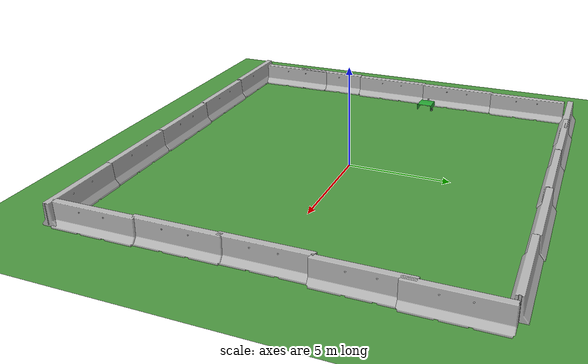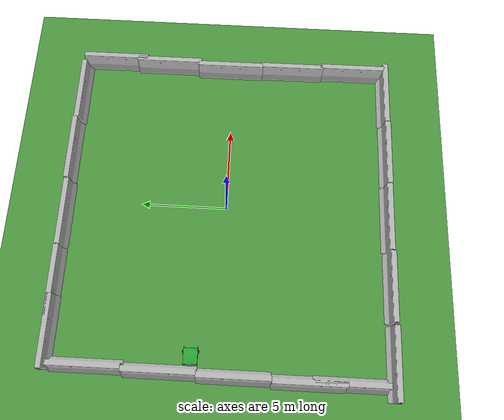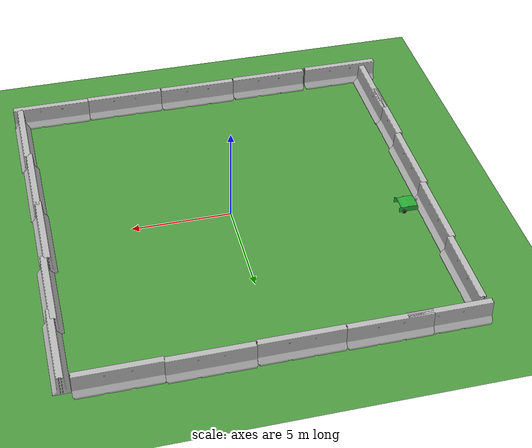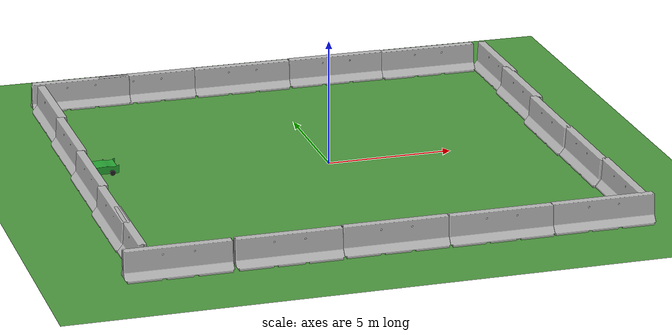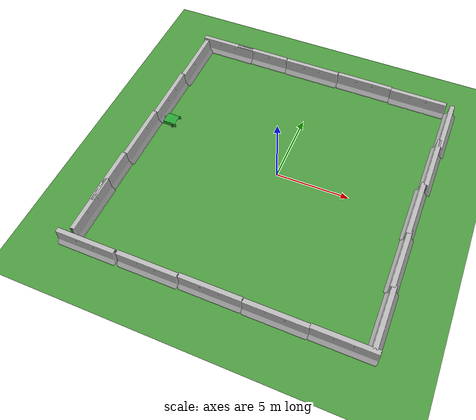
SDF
<sdf version="1.7">
 <world name="default">
  <light name="sun" type="directional">
   <pose>0 0 10 0 -0 0</pose>
   <diffuse>0.8 0.8 0.8 1</diffuse>
   <specular>0.2 0.2 0.2 1</specular>
   <attenuation>
    <range>1000</range>
    <constant>0.9</constant>
    <linear>0.01</linear>
    <quadratic>0.001</quadratic>
   </attenuation>
   <direction>-0.5 0.1 -0.9</direction>
   <spot><inner_angle>0</inner_angle><outer_angle>0</outer_angle><falloff>0</falloff></spot>
  </light>
  <model name="ground_plane">
   <static>1</static>
   <link name="link">
    <collision name="collision">
     <geometry><plane><normal>0 0 1</normal><size>100 100</size></plane></geometry>
     <surface><friction><ode><mu>100</mu><mu2>50</mu2></ode></friction></surface>
    </collision>
    <visual name="visual">
     <cast_shadows>0</cast_shadows>
     <geometry><plane><normal>0 0 1</normal><size>20 20</size></plane></geometry>
     <material>
      <script>
       <uri>model://jardim/materials/scripts</uri>
       <uri>model://jardim/materials/texture</uri>
       <name>vrc/grass</name>
      </script>
     </material>
    </visual>
   </link>
  </model>
  <gravity>0 0 -9.8</gravity>
  <magnetic_field>6e-06 2.3e-05 -4.2e-05</magnetic_field>
  <atmosphere type="adiabatic"/>
  <physics name="default_physics" default="0" type="ode">
   <max_step_size>0.001</max_step_size>
   <real_time_factor>1</real_time_factor>
   <real_time_update_rate>1000</real_time_update_rate>
  </physics>
  <scene><ambient>0.4 0.4 0.4 1</ambient><background>0.7 0.7 0.7 1</background><shadows>1</shadows></scene>
  <spherical_coordinates>
   <surface_model>EARTH_WGS84</surface_model>
   <latitude_deg>0</latitude_deg>
   <longitude_deg>0</longitude_deg>
   <elevation>0</elevation>
   <heading_deg>0</heading_deg>
  </spherical_coordinates>
  <model name="jersey_barrier">
   <static>1</static>
   <link name="link">
    <visual name="visual">
     <geometry><mesh><uri>model://jersey_barrier/meshes/jersey_barrier.dae</uri></mesh></geometry>
    </visual>
    <collision name="upright">
     <pose>0 0 0.5715 0 -0 0</pose>
     <geometry><box><size>4.06542 0.3063 1.143</size></box></geometry>
    </collision>
    <collision name="base">
     <pose>0 0 0.032258 0 -0 0</pose>
     <geometry><box><size>4.06542 0.8107 0.064516</size></box></geometry>
    </collision>
    <collision name="base2">
     <pose>0 0 0.1 0 -0 0</pose>
     <geometry><box><size>4.06542 0.65 0.1</size></box></geometry>
    </collision>
    <collision name="base3">
     <pose>0 0 0.2 0 -0 0</pose>
     <geometry><box><size>4.06542 0.5 0.1</size></box></geometry>
    </collision>
    <collision name="left-angle">
     <pose>0 -0.224 0.2401 0.9 -0 0</pose>
     <geometry><box><size>4.06542 0.5 0.064516</size></box></geometry>
    </collision>
    <collision name="right-angle">
     <pose>0 0.224 0.2401 -0.9 0 0</pose>
     <geometry><box><size>4.06542 0.5 0.064516</size></box></geometry>
    </collision>
   </link>
   <pose>-5.01879 9.49521 0 0 -0 0</pose>
  </model>
  <model name="jersey_barrier_clone">
   <static>1</static>
   <link name="link">
    <visual name="visual">
     <geometry><mesh><uri>model://jersey_barrier/meshes/jersey_barrier.dae</uri></mesh></geometry>
    </visual>
    <collision name="upright">
     <pose>0 0 0.5715 0 -0 0</pose>
     <geometry><box><size>4.06542 0.3063 1.143</size></box></geometry>
    </collision>
    <collision name="base">
     <pose>0 0 0.032258 0 -0 0</pose>
     <geometry><box><size>4.06542 0.8107 0.064516</size></box></geometry>
    </collision>
    <collision name="base2">
     <pose>0 0 0.1 0 -0 0</pose>
     <geometry><box><size>4.06542 0.65 0.1</size></box></geometry>
    </collision>
    <collision name="base3">
     <pose>0 0 0.2 0 -0 0</pose>
     <geometry><box><size>4.06542 0.5 0.1</size></box></geometry>
    </collision>
    <collision name="left-angle">
     <pose>0 -0.224 0.2401 0.9 -0 0</pose>
     <geometry><box><size>4.06542 0.5 0.064516</size></box></geometry>
    </collision>
    <collision name="right-angle">
     <pose>0 0.224 0.2401 -0.9 0 0</pose>
     <geometry><box><size>4.06542 0.5 0.064516</size></box></geometry>
    </collision>
   </link>
   <pose>-0.965961 9.47835 0 0 -0 0</pose>
  </model>
  <model name="jersey_barrier_clone_0">
   <static>1</static>
   <link name="link">
    <visual name="visual">
     <geometry><mesh><uri>model://jersey_barrier/meshes/jersey_barrier.dae</uri></mesh></geometry>
    </visual>
    <collision name="upright">
     <pose>0 0 0.5715 0 -0 0</pose>
     <geometry><box><size>4.06542 0.3063 1.143</size></box></geometry>
    </collision>
    <collision name="base">
     <pose>0 0 0.032258 0 -0 0</pose>
     <geometry><box><size>4.06542 0.8107 0.064516</size></box></geometry>
    </collision>
    <collision name="base2">
     <pose>0 0 0.1 0 -0 0</pose>
     <geometry><box><size>4.06542 0.65 0.1</size></box></geometry>
    </collision>
    <collision name="base3">
     <pose>0 0 0.2 0 -0 0</pose>
     <geometry><box><size>4.06542 0.5 0.1</size></box></geometry>
    </collision>
    <collision name="left-angle">
     <pose>0 -0.224 0.2401 0.9 -0 0</pose>
     <geometry><box><size>4.06542 0.5 0.064516</size></box></geometry>
    </collision>
    <collision name="right-angle">
     <pose>0 0.224 0.2401 -0.9 0 0</pose>
     <geometry><box><size>4.06542 0.5 0.064516</size></box></geometry>
    </collision>
   </link>
   <pose>3.10823 9.53607 0 0 -0 0</pose>
  </model>
  <model name="jersey_barrier_clone_1">
   <static>1</static>
   <link name="link">
    <visual name="visual">
     <geometry><mesh><uri>model://jersey_barrier/meshes/jersey_barrier.dae</uri></mesh></geometry>
    </visual>
    <collision name="upright">
     <pose>0 0 0.5715 0 -0 0</pose>
     <geometry><box><size>4.06542 0.3063 1.143</size></box></geometry>
    </collision>
    <collision name="base">
     <pose>0 0 0.032258 0 -0 0</pose>
     <geometry><box><size>4.06542 0.8107 0.064516</size></box></geometry>
    </collision>
    <collision name="base2">
     <pose>0 0 0.1 0 -0 0</pose>
     <geometry><box><size>4.06542 0.65 0.1</size></box></geometry>
    </collision>
    <collision name="base3">
     <pose>0 0 0.2 0 -0 0</pose>
     <geometry><box><size>4.06542 0.5 0.1</size></box></geometry>
    </collision>
    <collision name="left-angle">
     <pose>0 -0.224 0.2401 0.9 -0 0</pose>
     <geometry><box><size>4.06542 0.5 0.064516</size></box></geometry>
    </collision>
    <collision name="right-angle">
     <pose>0 0.224 0.2401 -0.9 0 0</pose>
     <geometry><box><size>4.06542 0.5 0.064516</size></box></geometry>
    </collision>
   </link>
   <pose>7.13222 9.46827 0 0 -0 0</pose>
  </model>
  <model name="jersey_barrier_clone_3">
   <static>1</static>
   <link name="link">
    <visual name="visual">
     <geometry><mesh><uri>model://jersey_barrier/meshes/jersey_barrier.dae</uri></mesh></geometry>
    </visual>
    <collision name="upright">
     <pose>0 0 0.5715 0 -0 0</pose>
     <geometry><box><size>4.06542 0.3063 1.143</size></box></geometry>
    </collision>
    <collision name="base">
     <pose>0 0 0.032258 0 -0 0</pose>
     <geometry><box><size>4.06542 0.8107 0.064516</size></box></geometry>
    </collision>
    <collision name="base2">
     <pose>0 0 0.1 0 -0 0</pose>
     <geometry><box><size>4.06542 0.65 0.1</size></box></geometry>
    </collision>
    <collision name="base3">
     <pose>0 0 0.2 0 -0 0</pose>
     <geometry><box><size>4.06542 0.5 0.1</size></box></geometry>
    </collision>
    <collision name="left-angle">
     <pose>0 -0.224 0.2401 0.9 -0 0</pose>
     <geometry><box><size>4.06542 0.5 0.064516</size></box></geometry>
    </collision>
    <collision name="right-angle">
     <pose>0 0.224 0.2401 -0.9 0 0</pose>
     <geometry><box><size>4.06542 0.5 0.064516</size></box></geometry>
    </collision>
   </link>
   <pose>9.46949 4.09413 0 0 0 -1.56865</pose>
  </model>
  <model name="jersey_barrier_clone_3_clone">
   <static>1</static>
   <link name="link">
    <visual name="visual">
     <geometry><mesh><uri>model://jersey_barrier/meshes/jersey_barrier.dae</uri></mesh></geometry>
    </visual>
    <collision name="upright">
     <pose>0 0 0.5715 0 -0 0</pose>
     <geometry><box><size>4.06542 0.3063 1.143</size></box></geometry>
    </collision>
    <collision name="base">
     <pose>0 0 0.032258 0 -0 0</pose>
     <geometry><box><size>4.06542 0.8107 0.064516</size></box></geometry>
    </collision>
    <collision name="base2">
     <pose>0 0 0.1 0 -0 0</pose>
     <geometry><box><size>4.06542 0.65 0.1</size></box></geometry>
    </collision>
    <collision name="base3">
     <pose>0 0 0.2 0 -0 0</pose>
     <geometry><box><size>4.06542 0.5 0.1</size></box></geometry>
    </collision>
    <collision name="left-angle">
     <pose>0 -0.224 0.2401 0.9 -0 0</pose>
     <geometry><box><size>4.06542 0.5 0.064516</size></box></geometry>
    </collision>
    <collision name="right-angle">
     <pose>0 0.224 0.2401 -0.9 0 0</pose>
     <geometry><box><size>4.06542 0.5 0.064516</size></box></geometry>
    </collision>
   </link>
   <pose>9.30616 0.213271 0 0 0 -1.56865</pose>
  </model>
  <model name="jersey_barrier_clone_3_clone_0">
   <static>1</static>
   <link name="link">
    <visual name="visual">
     <geometry><mesh><uri>model://jersey_barrier/meshes/jersey_barrier.dae</uri></mesh></geometry>
    </visual>
    <collision name="upright">
     <pose>0 0 0.5715 0 -0 0</pose>
     <geometry><box><size>4.06542 0.3063 1.143</size></box></geometry>
    </collision>
    <collision name="base">
     <pose>0 0 0.032258 0 -0 0</pose>
     <geometry><box><size>4.06542 0.8107 0.064516</size></box></geometry>
    </collision>
    <collision name="base2">
     <pose>0 0 0.1 0 -0 0</pose>
     <geometry><box><size>4.06542 0.65 0.1</size></box></geometry>
    </collision>
    <collision name="base3">
     <pose>0 0 0.2 0 -0 0</pose>
     <geometry><box><size>4.06542 0.5 0.1</size></box></geometry>
    </collision>
    <collision name="left-angle">
     <pose>0 -0.224 0.2401 0.9 -0 0</pose>
     <geometry><box><size>4.06542 0.5 0.064516</size></box></geometry>
    </collision>
    <collision name="right-angle">
     <pose>0 0.224 0.2401 -0.9 0 0</pose>
     <geometry><box><size>4.06542 0.5 0.064516</size></box></geometry>
    </collision>
   </link>
   <pose>9.37231 -3.57069 0 0 0 -1.56865</pose>
  </model>
  <model name="jersey_barrier_clone_3_clone_1">
   <static>1</static>
   <link name="link">
    <visual name="visual">
     <geometry><mesh><uri>model://jersey_barrier/meshes/jersey_barrier.dae</uri></mesh></geometry>
    </visual>
    <collision name="upright">
     <pose>0 0 0.5715 0 -0 0</pose>
     <geometry><box><size>4.06542 0.3063 1.143</size></box></geometry>
    </collision>
    <collision name="base">
     <pose>0 0 0.032258 0 -0 0</pose>
     <geometry><box><size>4.06542 0.8107 0.064516</size></box></geometry>
    </collision>
    <collision name="base2">
     <pose>0 0 0.1 0 -0 0</pose>
     <geometry><box><size>4.06542 0.65 0.1</size></box></geometry>
    </collision>
    <collision name="base3">
     <pose>0 0 0.2 0 -0 0</pose>
     <geometry><box><size>4.06542 0.5 0.1</size></box></geometry>
    </collision>
    <collision name="left-angle">
     <pose>0 -0.224 0.2401 0.9 -0 0</pose>
     <geometry><box><size>4.06542 0.5 0.064516</size></box></geometry>
    </collision>
    <collision name="right-angle">
     <pose>0 0.224 0.2401 -0.9 0 0</pose>
     <geometry><box><size>4.06542 0.5 0.064516</size></box></geometry>
    </collision>
   </link>
   <pose>9.47101 -7.44272 0 0 0 -1.56865</pose>
  </model>
  <model name="jersey_barrier_clone_2_clone">
   <static>1</static>
   <link name="link">
    <visual name="visual">
     <geometry><mesh><uri>model://jersey_barrier/meshes/jersey_barrier.dae</uri></mesh></geometry>
    </visual>
    <collision name="upright">
     <pose>0 0 0.5715 0 -0 0</pose>
     <geometry><box><size>4.06542 0.3063 1.143</size></box></geometry>
    </collision>
    <collision name="base">
     <pose>0 0 0.032258 0 -0 0</pose>
     <geometry><box><size>4.06542 0.8107 0.064516</size></box></geometry>
    </collision>
    <collision name="base2">
     <pose>0 0 0.1 0 -0 0</pose>
     <geometry><box><size>4.06542 0.65 0.1</size></box></geometry>
    </collision>
    <collision name="base3">
     <pose>0 0 0.2 0 -0 0</pose>
     <geometry><box><size>4.06542 0.5 0.1</size></box></geometry>
    </collision>
    <collision name="left-angle">
     <pose>0 -0.224 0.2401 0.9 -0 0</pose>
     <geometry><box><size>4.06542 0.5 0.064516</size></box></geometry>
    </collision>
    <collision name="right-angle">
     <pose>0 0.224 0.2401 -0.9 0 0</pose>
     <geometry><box><size>4.06542 0.5 0.064516</size></box></geometry>
    </collision>
   </link>
   <pose>7.81323 -9.51639 0 0 -0 0</pose>
  </model>
  <model name="jersey_barrier_clone_2_clone_0">
   <static>1</static>
   <link name="link">
    <visual name="visual">
     <geometry><mesh><uri>model://jersey_barrier/meshes/jersey_barrier.dae</uri></mesh></geometry>
    </visual>
    <collision name="upright">
     <pose>0 0 0.5715 0 -0 0</pose>
     <geometry><box><size>4.06542 0.3063 1.143</size></box></geometry>
    </collision>
    <collision name="base">
     <pose>0 0 0.032258 0 -0 0</pose>
     <geometry><box><size>4.06542 0.8107 0.064516</size></box></geometry>
    </collision>
    <collision name="base2">
     <pose>0 0 0.1 0 -0 0</pose>
     <geometry><box><size>4.06542 0.65 0.1</size></box></geometry>
    </collision>
    <collision name="base3">
     <pose>0 0 0.2 0 -0 0</pose>
     <geometry><box><size>4.06542 0.5 0.1</size></box></geometry>
    </collision>
    <collision name="left-angle">
     <pose>0 -0.224 0.2401 0.9 -0 0</pose>
     <geometry><box><size>4.06542 0.5 0.064516</size></box></geometry>
    </collision>
    <collision name="right-angle">
     <pose>0 0.224 0.2401 -0.9 0 0</pose>
     <geometry><box><size>4.06542 0.5 0.064516</size></box></geometry>
    </collision>
   </link>
   <pose>3.78305 -9.55571 0 0 -0 0</pose>
  </model>
  <model name="jersey_barrier_clone_2_clone_1">
   <static>1</static>
   <link name="link">
    <visual name="visual">
     <geometry><mesh><uri>model://jersey_barrier/meshes/jersey_barrier.dae</uri></mesh></geometry>
    </visual>
    <collision name="upright">
     <pose>0 0 0.5715 0 -0 0</pose>
     <geometry><box><size>4.06542 0.3063 1.143</size></box></geometry>
    </collision>
    <collision name="base">
     <pose>0 0 0.032258 0 -0 0</pose>
     <geometry><box><size>4.06542 0.8107 0.064516</size></box></geometry>
    </collision>
    <collision name="base2">
     <pose>0 0 0.1 0 -0 0</pose>
     <geometry><box><size>4.06542 0.65 0.1</size></box></geometry>
    </collision>
    <collision name="base3">
     <pose>0 0 0.2 0 -0 0</pose>
     <geometry><box><size>4.06542 0.5 0.1</size></box></geometry>
    </collision>
    <collision name="left-angle">
     <pose>0 -0.224 0.2401 0.9 -0 0</pose>
     <geometry><box><size>4.06542 0.5 0.064516</size></box></geometry>
    </collision>
    <collision name="right-angle">
     <pose>0 0.224 0.2401 -0.9 0 0</pose>
     <geometry><box><size>4.06542 0.5 0.064516</size></box></geometry>
    </collision>
   </link>
   <pose>-0.29067 -9.53339 0 0 -0 0</pose>
  </model>
  <model name="jersey_barrier_clone_2_clone_2">
   <static>1</static>
   <link name="link">
    <visual name="visual">
     <geometry><mesh><uri>model://jersey_barrier/meshes/jersey_barrier.dae</uri></mesh></geometry>
    </visual>
    <collision name="upright">
     <pose>0 0 0.5715 0 -0 0</pose>
     <geometry><box><size>4.06542 0.3063 1.143</size></box></geometry>
    </collision>
    <collision name="base">
     <pose>0 0 0.032258 0 -0 0</pose>
     <geometry><box><size>4.06542 0.8107 0.064516</size></box></geometry>
    </collision>
    <collision name="base2">
     <pose>0 0 0.1 0 -0 0</pose>
     <geometry><box><size>4.06542 0.65 0.1</size></box></geometry>
    </collision>
    <collision name="base3">
     <pose>0 0 0.2 0 -0 0</pose>
     <geometry><box><size>4.06542 0.5 0.1</size></box></geometry>
    </collision>
    <collision name="left-angle">
     <pose>0 -0.224 0.2401 0.9 -0 0</pose>
     <geometry><box><size>4.06542 0.5 0.064516</size></box></geometry>
    </collision>
    <collision name="right-angle">
     <pose>0 0.224 0.2401 -0.9 0 0</pose>
     <geometry><box><size>4.06542 0.5 0.064516</size></box></geometry>
    </collision>
   </link>
   <pose>-4.3781 -9.58852 0 0 -0 0</pose>
  </model>
  <model name="jersey_barrier_clone_3_clone_1_clone">
   <static>1</static>
   <link name="link">
    <visual name="visual">
     <geometry><mesh><uri>model://jersey_barrier/meshes/jersey_barrier.dae</uri></mesh></geometry>
    </visual>
    <collision name="upright">
     <pose>0 0 0.5715 0 -0 0</pose>
     <geometry><box><size>4.06542 0.3063 1.143</size></box></geometry>
    </collision>
    <collision name="base">
     <pose>0 0 0.032258 0 -0 0</pose>
     <geometry><box><size>4.06542 0.8107 0.064516</size></box></geometry>
    </collision>
    <collision name="base2">
     <pose>0 0 0.1 0 -0 0</pose>
     <geometry><box><size>4.06542 0.65 0.1</size></box></geometry>
    </collision>
    <collision name="base3">
     <pose>0 0 0.2 0 -0 0</pose>
     <geometry><box><size>4.06542 0.5 0.1</size></box></geometry>
    </collision>
    <collision name="left-angle">
     <pose>0 -0.224 0.2401 0.9 -0 0</pose>
     <geometry><box><size>4.06542 0.5 0.064516</size></box></geometry>
    </collision>
    <collision name="right-angle">
     <pose>0 0.224 0.2401 -0.9 0 0</pose>
     <geometry><box><size>4.06542 0.5 0.064516</size></box></geometry>
    </collision>
   </link>
   <pose>-9.80342 -4.94734 0 0 0 -1.56865</pose>
  </model>
  <model name="jersey_barrier_clone_3_clone_1_clone_0">
   <static>1</static>
   <link name="link">
    <visual name="visual">
     <geometry><mesh><uri>model://jersey_barrier/meshes/jersey_barrier.dae</uri></mesh></geometry>
    </visual>
    <collision name="upright">
     <pose>0 0 0.5715 0 -0 0</pose>
     <geometry><box><size>4.06542 0.3063 1.143</size></box></geometry>
    </collision>
    <collision name="base">
     <pose>0 0 0.032258 0 -0 0</pose>
     <geometry><box><size>4.06542 0.8107 0.064516</size></box></geometry>
    </collision>
    <collision name="base2">
     <pose>0 0 0.1 0 -0 0</pose>
     <geometry><box><size>4.06542 0.65 0.1</size></box></geometry>
    </collision>
    <collision name="base3">
     <pose>0 0 0.2 0 -0 0</pose>
     <geometry><box><size>4.06542 0.5 0.1</size></box></geometry>
    </collision>
    <collision name="left-angle">
     <pose>0 -0.224 0.2401 0.9 -0 0</pose>
     <geometry><box><size>4.06542 0.5 0.064516</size></box></geometry>
    </collision>
    <collision name="right-angle">
     <pose>0 0.224 0.2401 -0.9 0 0</pose>
     <geometry><box><size>4.06542 0.5 0.064516</size></box></geometry>
    </collision>
   </link>
   <pose>-9.70647 -0.901357 0 0 0 -1.56865</pose>
  </model>
  <model name="jersey_barrier_clone_3_clone_1_clone_1">
   <static>1</static>
   <link name="link">
    <visual name="visual">
     <geometry><mesh><uri>model://jersey_barrier/meshes/jersey_barrier.dae</uri></mesh></geometry>
    </visual>
    <collision name="upright">
     <pose>0 0 0.5715 0 -0 0</pose>
     <geometry><box><size>4.06542 0.3063 1.143</size></box></geometry>
    </collision>
    <collision name="base">
     <pose>0 0 0.032258 0 -0 0</pose>
     <geometry><box><size>4.06542 0.8107 0.064516</size></box></geometry>
    </collision>
    <collision name="base2">
     <pose>0 0 0.1 0 -0 0</pose>
     <geometry><box><size>4.06542 0.65 0.1</size></box></geometry>
    </collision>
    <collision name="base3">
     <pose>0 0 0.2 0 -0 0</pose>
     <geometry><box><size>4.06542 0.5 0.1</size></box></geometry>
    </collision>
    <collision name="left-angle">
     <pose>0 -0.224 0.2401 0.9 -0 0</pose>
     <geometry><box><size>4.06542 0.5 0.064516</size></box></geometry>
    </collision>
    <collision name="right-angle">
     <pose>0 0.224 0.2401 -0.9 0 0</pose>
     <geometry><box><size>4.06542 0.5 0.064516</size></box></geometry>
    </collision>
   </link>
   <pose>-9.61058 3.11552 0 0 0 -1.56865</pose>
  </model>
  <model name="jersey_barrier_clone_3_clone_1_clone_2">
   <static>1</static>
   <link name="link">
    <visual name="visual">
     <geometry><mesh><uri>model://jersey_barrier/meshes/jersey_barrier.dae</uri></mesh></geometry>
    </visual>
    <collision name="upright">
     <pose>0 0 0.5715 0 -0 0</pose>
     <geometry><box><size>4.06542 0.3063 1.143</size></box></geometry>
    </collision>
    <collision name="base">
     <pose>0 0 0.032258 0 -0 0</pose>
     <geometry><box><size>4.06542 0.8107 0.064516</size></box></geometry>
    </collision>
    <collision name="base2">
     <pose>0 0 0.1 0 -0 0</pose>
     <geometry><box><size>4.06542 0.65 0.1</size></box></geometry>
    </collision>
    <collision name="base3">
     <pose>0 0 0.2 0 -0 0</pose>
     <geometry><box><size>4.06542 0.5 0.1</size></box></geometry>
    </collision>
    <collision name="left-angle">
     <pose>0 -0.224 0.2401 0.9 -0 0</pose>
     <geometry><box><size>4.06542 0.5 0.064516</size></box></geometry>
    </collision>
    <collision name="right-angle">
     <pose>0 0.224 0.2401 -0.9 0 0</pose>
     <geometry><box><size>4.06542 0.5 0.064516</size></box></geometry>
    </collision>
   </link>
   <pose>-9.5034 7.14109 0 0 0 -1.56865</pose>
  </model>
  <model name="jersey_barrier_clone_3_clone_2">
   <static>1</static>
   <link name="link">
    <visual name="visual">
     <geometry><mesh><uri>model://jersey_barrier/meshes/jersey_barrier.dae</uri></mesh></geometry>
    </visual>
    <collision name="upright">
     <pose>0 0 0.5715 0 -0 0</pose>
     <geometry><box><size>4.06542 0.3063 1.143</size></box></geometry>
    </collision>
    <collision name="base">
     <pose>0 0 0.032258 0 -0 0</pose>
     <geometry><box><size>4.06542 0.8107 0.064516</size></box></geometry>
    </collision>
    <collision name="base2">
     <pose>0 0 0.1 0 -0 0</pose>
     <geometry><box><size>4.06542 0.65 0.1</size></box></geometry>
    </collision>
    <collision name="base3">
     <pose>0 0 0.2 0 -0 0</pose>
     <geometry><box><size>4.06542 0.5 0.1</size></box></geometry>
    </collision>
    <collision name="left-angle">
     <pose>0 -0.224 0.2401 0.9 -0 0</pose>
     <geometry><box><size>4.06542 0.5 0.064516</size></box></geometry>
    </collision>
    <collision name="right-angle">
     <pose>0 0.224 0.2401 -0.9 0 0</pose>
     <geometry><box><size>4.06542 0.5 0.064516</size></box></geometry>
    </collision>
   </link>
   <pose>9.58567 7.49698 0 0 0 -1.56865</pose>
  </model>
  <model name="jersey_barrier_clone_2">
   <static>1</static>
   <link name="link">
    <visual name="visual">
     <geometry><mesh><uri>model://jersey_barrier/meshes/jersey_barrier.dae</uri></mesh></geometry>
    </visual>
    <collision name="upright">
     <pose>0 0 0.5715 0 -0 0</pose>
     <geometry><box><size>4.06542 0.3063 1.143</size></box></geometry>
    </collision>
    <collision name="base">
     <pose>0 0 0.032258 0 -0 0</pose>
     <geometry><box><size>4.06542 0.8107 0.064516</size></box></geometry>
    </collision>
    <collision name="base2">
     <pose>0 0 0.1 0 -0 0</pose>
     <geometry><box><size>4.06542 0.65 0.1</size></box></geometry>
    </collision>
    <collision name="base3">
     <pose>0 0 0.2 0 -0 0</pose>
     <geometry><box><size>4.06542 0.5 0.1</size></box></geometry>
    </collision>
    <collision name="left-angle">
     <pose>0 -0.224 0.2401 0.9 -0 0</pose>
     <geometry><box><size>4.06542 0.5 0.064516</size></box></geometry>
    </collision>
    <collision name="right-angle">
     <pose>0 0.224 0.2401 -0.9 0 0</pose>
     <geometry><box><size>4.06542 0.5 0.064516</size></box></geometry>
    </collision>
   </link>
   <pose>-7.81168 9.46712 0 0 -0 0</pose>
  </model>
  <model name="jersey_barrier_clone_4">
   <static>1</static>
   <link name="link">
    <visual name="visual">
     <geometry><mesh><uri>model://jersey_barrier/meshes/jersey_barrier.dae</uri></mesh></geometry>
    </visual>
    <collision name="upright">
     <pose>0 0 0.5715 0 -0 0</pose>
     <geometry><box><size>4.06542 0.3063 1.143</size></box></geometry>
    </collision>
    <collision name="base">
     <pose>0 0 0.032258 0 -0 0</pose>
     <geometry><box><size>4.06542 0.8107 0.064516</size></box></geometry>
    </collision>
    <collision name="base2">
     <pose>0 0 0.1 0 -0 0</pose>
     <geometry><box><size>4.06542 0.65 0.1</size></box></geometry>
    </collision>
    <collision name="base3">
     <pose>0 0 0.2 0 -0 0</pose>
     <geometry><box><size>4.06542 0.5 0.1</size></box></geometry>
    </collision>
    <collision name="left-angle">
     <pose>0 -0.224 0.2401 0.9 -0 0</pose>
     <geometry><box><size>4.06542 0.5 0.064516</size></box></geometry>
    </collision>
    <collision name="right-angle">
     <pose>0 0.224 0.2401 -0.9 0 0</pose>
     <geometry><box><size>4.06542 0.5 0.064516</size></box></geometry>
    </collision>
   </link>
   <pose>-8.55078 -9.62975 0 0 -0 0</pose>
  </model>
  <model name="jersey_barrier_clone_3_clone_1_clone_clone">
   <static>1</static>
   <link name="link">
    <visual name="visual">
     <geometry><mesh><uri>model://jersey_barrier/meshes/jersey_barrier.dae</uri></mesh></geometry>
    </visual>
    <collision name="upright">
     <pose>0 0 0.5715 0 -0 0</pose>
     <geometry><box><size>4.06542 0.3063 1.143</size></box></geometry>
    </collision>
    <collision name="base">
     <pose>0 0 0.032258 0 -0 0</pose>
     <geometry><box><size>4.06542 0.8107 0.064516</size></box></geometry>
    </collision>
    <collision name="base2">
     <pose>0 0 0.1 0 -0 0</pose>
     <geometry><box><size>4.06542 0.65 0.1</size></box></geometry>
    </collision>
    <collision name="base3">
     <pose>0 0 0.2 0 -0 0</pose>
     <geometry><box><size>4.06542 0.5 0.1</size></box></geometry>
    </collision>
    <collision name="left-angle">
     <pose>0 -0.224 0.2401 0.9 -0 0</pose>
     <geometry><box><size>4.06542 0.5 0.064516</size></box></geometry>
    </collision>
    <collision name="right-angle">
     <pose>0 0.224 0.2401 -0.9 0 0</pose>
     <geometry><box><size>4.06542 0.5 0.064516</size></box></geometry>
    </collision>
   </link>
   <pose>-9.75761 -7.21996 0 0 0 -1.56865</pose>
  </model>
  <model name="cortador">
   <link name="chassis">
    <inertial>
     <pose>0.088667 0 0.027667 0 -0 0</pose>
     <mass>6.00004</mass>
     <inertia>
      <ixx>0.337023</ixx>
      <ixy>1.03398e-25</ixy>
      <ixz>-0.0735923</ixz>
      <iyy>0.777916</iyy>
      <iyz>0</iyz>
      <izz>0.754747</izz>
     </inertia>
    </inertial>
    <collision name="chassis_fixed_joint_lump__collision_collision">
     <geometry><box><size>1.064 0.8 0.332</size></box></geometry>
    </collision>
    <collision name="chassis_fixed_joint_lump__caster_collision_collision_1">
     <pose>0.47825 0 -0.166 0 -0 0</pose>
     <geometry><sphere><radius>0.05375</radius></sphere></geometry>
    </collision>
    <collision name="chassis_fixed_joint_lump__camera_link_mid_collision_2">
     <pose>0.542 0 -0.156 3.14159 1.57079 3.14159</pose>
     <geometry><box><size>0.02 0.02 0.02</size></box></geometry>
    </collision>
    <collision name="chassis_fixed_joint_lump__sensor_laser_collision_3">
     <pose>0.532 0 0.166 0 -0 0</pose>
     <geometry><cylinder><length>0.1</length><radius>0.05</radius></cylinder></geometry>
    </collision>
    <collision name="chassis_fixed_joint_lump__odom_link_collision_4">
     <pose>-0.2 0 0 0 -0 0</pose>
     <geometry><box><size>1e-06 1e-06 1e-06</size></box></geometry>
    </collision>
    <collision name="chassis_fixed_joint_lump__sensor_link_left_collision_5">
     <pose>0 0.4 0.166 0 -0 1.57</pose>
     <geometry><box><size>0.02 0.02 0.02</size></box></geometry>
    </collision>
    <collision name="chassis_fixed_joint_lump__sensor_link_right_collision_6">
     <pose>0 -0.4 0.166 0 0 -1.57</pose>
     <geometry><box><size>0.02 0.02 0.02</size></box></geometry>
    </collision>
    <visual name="chassis_visual_visual">
     <geometry>
      <mesh>
       <scale>1 1 1</scale>
       <uri>/home/aleronupe/Documentos/PI2/Software-Embarcado/simulation_ws/src/cortador_description/meshes/carroceria_mesh.dae</uri>
      </mesh>
     </geometry>
     <material>
      <script><name>Gazebo/Green</name><uri>file://media/materials/scripts/gazebo.material</uri></script>
     </material>
    </visual>
    <visual name="chassis_fixed_joint_lump__caster_visual_visual_1">
     <pose>0.47825 0 -0.166 0 -0 0</pose>
     <geometry><sphere><radius>0.05375</radius></sphere></geometry>
    </visual>
    <visual name="chassis_fixed_joint_lump__camera_link_mid_visual_2">
     <pose>0.542 0 -0.156 3.14159 1.57079 3.14159</pose>
     <geometry><box><size>0.02 0.02 0.02</size></box></geometry>
    </visual>
    <visual name="chassis_fixed_joint_lump__sensor_laser_visual_3">
     <pose>0.532 0 0.166 0 -0 0</pose>
     <geometry><cylinder><length>0.1</length><radius>0.05</radius></cylinder></geometry>
    </visual>
    <visual name="chassis_fixed_joint_lump__sensor_link_left_visual_4">
     <pose>0 0.4 0.166 0 -0 1.57</pose>
     <geometry><box><size>0.02 0.02 0.02</size></box></geometry>
    </visual>
    <visual name="chassis_fixed_joint_lump__sensor_link_right_visual_5">
     <pose>0 -0.4 0.166 0 0 -1.57</pose>
     <geometry><box><size>0.02 0.02 0.02</size></box></geometry>
    </visual>
    <sensor name="camera_mid" type="camera">
     <update_rate>30</update_rate>
     <visualize>1</visualize>
     <camera name="head">
      <horizontal_fov>1.345</horizontal_fov>
      <image><width>1</width><height>1</height><format>R8G8B8</format></image>
      <clip><near>0.02</near><far>300</far></clip>
      <noise><type>gaussian</type><mean>0</mean><stddev>0.007</stddev></noise>
     </camera>
     <plugin name="camera_controller" filename="libgazebo_ros_camera.so">
      <alwaysOn>1</alwaysOn>
      <updateRate>0.0</updateRate>
      <cameraName>camera_mid</cameraName>
      <imageTopicName>image_raw</imageTopicName>
      <cameraInfoTopicName>camera_info</cameraInfoTopicName>
      <frameName>camera_link_mid</frameName>
      <hackBaseline>0.07</hackBaseline>
      <distortionK1>0.0</distortionK1>
      <distortionK2>0.0</distortionK2>
      <distortionK3>0.0</distortionK3>
      <distortionT1>0.0</distortionT1>
      <distortionT2>0.0</distortionT2>
      <robotNamespace>/</robotNamespace>
     </plugin>
     <pose>0.542 0 -0.156 3.14159 1.57079 3.14159</pose>
    </sensor>
    <sensor name="head_hokuyo_sensor" type="ray">
     <visualize>1</visualize>
     <update_rate>20</update_rate>
     <ray>
      <scan>
       <horizontal>
        <samples>20</samples>
        <resolution>1</resolution>
        <min_angle>-0.09722</min_angle>
        <max_angle>0.09722</max_angle>
       </horizontal>
       <vertical><samples>1</samples><min_angle>0</min_angle><max_angle>0</max_angle></vertical>
      </scan>
      <range><min>0.1</min><max>2</max><resolution>0.01</resolution></range>
      <noise><type>gaussian</type><mean>0</mean><stddev>0.01</stddev></noise>
     </ray>
     <plugin name="gazebo_ros_head_hokuyo_controller" filename="libgazebo_ros_laser.so">
      <topicName>/cortador/laser/scan</topicName>
      <frameName>sensor_laser</frameName>
      <robotNamespace>/</robotNamespace>
     </plugin>
     <pose>0.532 0 0.166 0 -0 0</pose>
    </sensor>
    <sensor name="head_hokuyo_sensor_3" type="ray">
     <visualize>1</visualize>
     <update_rate>10</update_rate>
     <ray>
      <scan>
       <horizontal>
        <samples>40</samples>
        <resolution>1</resolution>
        <min_angle>-0.1308</min_angle>
        <max_angle>0.1308</max_angle>
       </horizontal>
       <vertical><samples>1</samples><min_angle>0</min_angle><max_angle>0</max_angle></vertical>
      </scan>
      <range><min>0.2</min><max>4</max><resolution>0.2</resolution></range>
      <noise><type>gaussian</type><mean>0</mean><stddev>0.01</stddev></noise>
     </ray>
     <plugin name="gazebo_ros_range" filename="libgazebo_ros_laser.so">
      <topicName>/cortador/laser/scan_left</topicName>
      <frameName>sensor_link_left</frameName>
      <robotNamespace>/</robotNamespace>
     </plugin>
     <pose>0 0.4 0.166 0 -0 1.57</pose>
    </sensor>
    <sensor name="head_hokuyo_sensor_2" type="ray">
     <visualize>1</visualize>
     <update_rate>10</update_rate>
     <ray>
      <scan>
       <horizontal>
        <samples>40</samples>
        <resolution>1</resolution>
        <min_angle>-0.1308</min_angle>
        <max_angle>0.1308</max_angle>
       </horizontal>
       <vertical><samples>1</samples><min_angle>0</min_angle><max_angle>0</max_angle></vertical>
      </scan>
      <range><min>0.2</min><max>4</max><resolution>0.2</resolution></range>
      <noise><type>gaussian</type><mean>0</mean><stddev>0.01</stddev></noise>
     </ray>
     <plugin name="gazebo_ros_range" filename="libgazebo_ros_laser.so">
      <alwaysOn>1</alwaysOn>
      <topicName>/cortador/laser/scan_right</topicName>
      <frameName>sensor_link_right</frameName>
      <robotNamespace>/</robotNamespace>
     </plugin>
     <pose>0 -0.4 0.166 0 0 -1.57</pose>
    </sensor>
   </link>
   <joint name="left_wheel_hinge" type="revolute">
    <pose relative_to="chassis">-0.2 0.425 -0.11225 0 -0 0</pose>
    <parent>chassis</parent>
    <child>left_wheel</child>
    <axis>
     <xyz>0 1 0</xyz>
     <limit><lower>-1e+16</lower><upper>1e+16</upper></limit>
     <dynamics><spring_reference>0</spring_reference><spring_stiffness>0</spring_stiffness></dynamics>
    </axis>
   </joint>
   <link name="left_wheel">
    <pose relative_to="left_wheel_hinge">0 0 0 0 -0 0</pose>
    <inertial>
     <pose>0 0 0 -0 1.5707 1.5707</pose>
     <mass>5</mass>
     <inertia>
      <ixx>0.015487</ixx>
      <ixy>0</ixy>
      <ixz>0</ixz>
      <iyy>0.015487</iyy>
      <iyz>0</iyz>
      <izz>0.0288906</izz>
     </inertia>
    </inertial>
    <collision name="left_wheel_fixed_joint_lump__collision_collision">
     <pose>0 0 0 1.57089 1.57079 -3.14159</pose>
     <geometry><cylinder><length>0.05</length><radius>0.1075</radius></cylinder></geometry>
    </collision>
    <visual name="left_wheel_visual_visual">
     <pose>0 0 0 1.57089 1.57079 -3.14159</pose>
     <geometry><cylinder><length>0.05</length><radius>0.1075</radius></cylinder></geometry>
     <material>
      <script><name>Gazebo/Black</name><uri>file://media/materials/scripts/gazebo.material</uri></script>
     </material>
    </visual>
   </link>
   <joint name="right_wheel_hinge" type="revolute">
    <pose relative_to="chassis">-0.2 -0.425 -0.11225 0 -0 0</pose>
    <parent>chassis</parent>
    <child>right_wheel</child>
    <axis>
     <xyz>0 1 0</xyz>
     <limit><lower>-1e+16</lower><upper>1e+16</upper></limit>
     <dynamics><spring_reference>0</spring_reference><spring_stiffness>0</spring_stiffness></dynamics>
    </axis>
   </joint>
   <link name="right_wheel">
    <pose relative_to="right_wheel_hinge">0 0 0 0 -0 0</pose>
    <inertial>
     <pose>0 0 0 -0 1.5707 1.5707</pose>
     <mass>5</mass>
     <inertia>
      <ixx>0.015487</ixx>
      <ixy>0</ixy>
      <ixz>0</ixz>
      <iyy>0.015487</iyy>
      <iyz>0</iyz>
      <izz>0.0288906</izz>
     </inertia>
    </inertial>
    <collision name="right_wheel_fixed_joint_lump__collision_collision">
     <pose>0 0 0 1.57089 1.57079 -3.14159</pose>
     <geometry><cylinder><length>0.05</length><radius>0.1075</radius></cylinder></geometry>
    </collision>
    <visual name="right_wheel_visual_visual">
     <pose>0 0 0 1.57089 1.57079 -3.14159</pose>
     <geometry><cylinder><length>0.05</length><radius>0.1075</radius></cylinder></geometry>
     <material>
      <script><name>Gazebo/Black</name><uri>file://media/materials/scripts/gazebo.material</uri></script>
     </material>
    </visual>
   </link>
   <static>0</static>
   <plugin name="differential_drive_controller" filename="libgazebo_ros_diff_drive.so">
    <legacyMode>0</legacyMode>
    <alwaysOn>1</alwaysOn>
    <updateRate>20</updateRate>
    <leftJoint>left_wheel_hinge</leftJoint>
    <rightJoint>right_wheel_hinge</rightJoint>
    <wheelSeparation>0.85</wheelSeparation>
    <wheelDiameter>0.215</wheelDiameter>
    <torque>50.0</torque>
    <wheelTorque>50.0</wheelTorque>
    <commandTopic>cmd_vel</commandTopic>
    <odometryTopic>/odom</odometryTopic>
    <odometryFrame>odom_link</odometryFrame>
    <robotBaseFrame>chassis</robotBaseFrame>
    <robotNamespace>/</robotNamespace>
   </plugin>
   <pose>-8.64976 1.49691 0.219757 0 -2.4e-05 -3.14029</pose>
  </model>
 </world>
</sdf>
